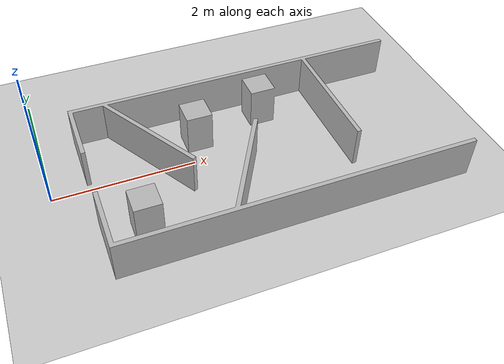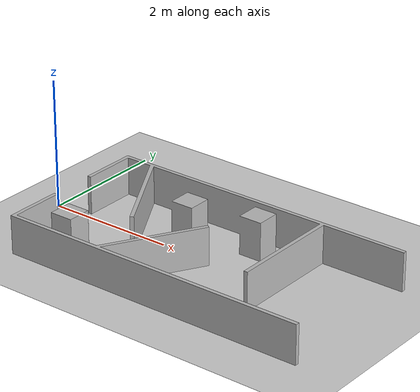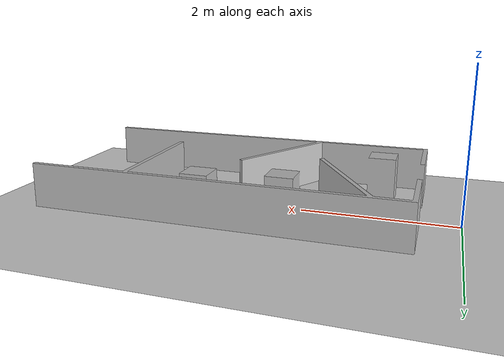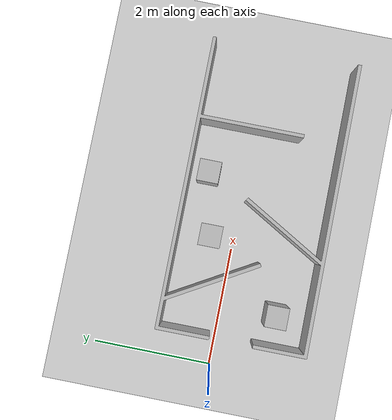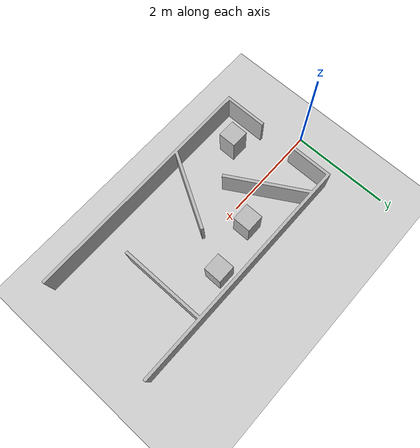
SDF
<?xml version="1.0" ?>
<sdf version="1.6">
  <world name="project3_world">

    <include>
      <uri>model://ground_plane</uri>
    </include>

    <include>
      <uri>model://sun</uri>
    </include>

    <include>
      <uri>model://project3</uri>
      <pose>0.5 1.0 0 0 0 -1.57</pose>
    </include>

  </world>
</sdf>

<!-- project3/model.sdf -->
<sdf version="1.6">
    <model name="project3">
        <static>true</static>
        <link name="link">
            <pose>0 0 0 0 0 0</pose>
            <visual name="visual">
                <geometry>
                    <mesh>
                        <uri>model://project3/meshes/map-project3-phase2.STL</uri>
                        <scale>0.0012 0.0012 0.0012</scale>
                    </mesh>
                </geometry>
            </visual>
            <collision name="collision">
                <geometry>
                    <mesh>
                        <uri>model://project3/meshes/map-project3-phase2.STL</uri>
                        <scale>0.0012 0.0012 0.0012</scale>
                    </mesh>
                </geometry>
            </collision>
            <inertial>
                <mass>1.0</mass>
                <inertia>
                    <ixx>0.01</ixx>
                    <iyy>0.01</iyy>
                    <izz>0.01</izz>
                    <ixy>0.0</ixy>
                    <ixz>0.0</ixz>
                    <iyz>0.0</iyz>
                </inertia>
            </inertial>
        </link>
    </model>
</sdf>
